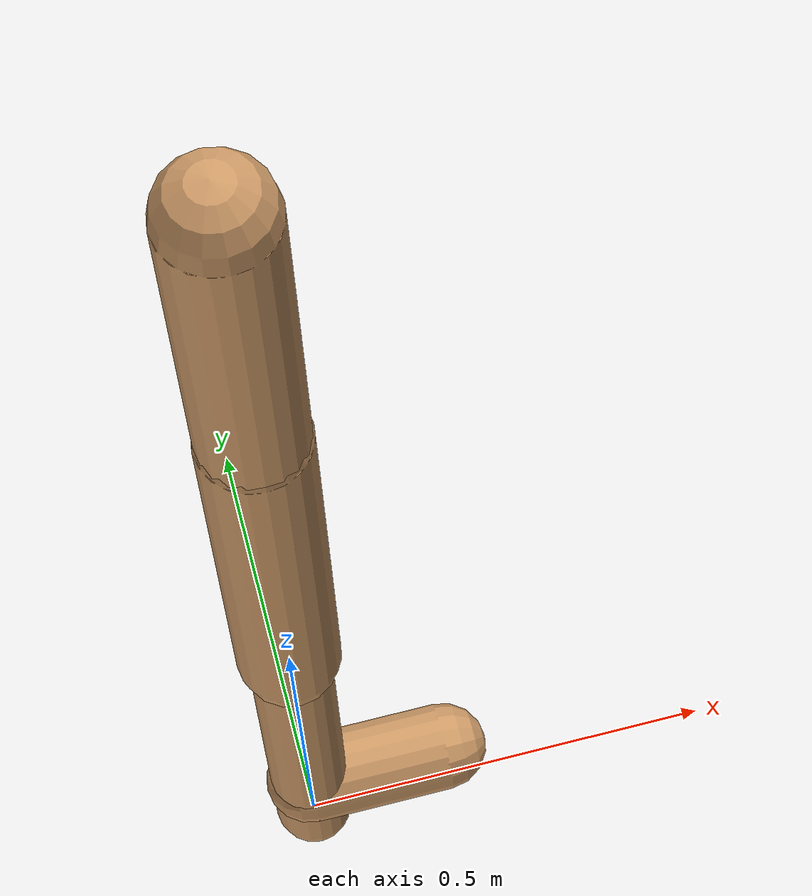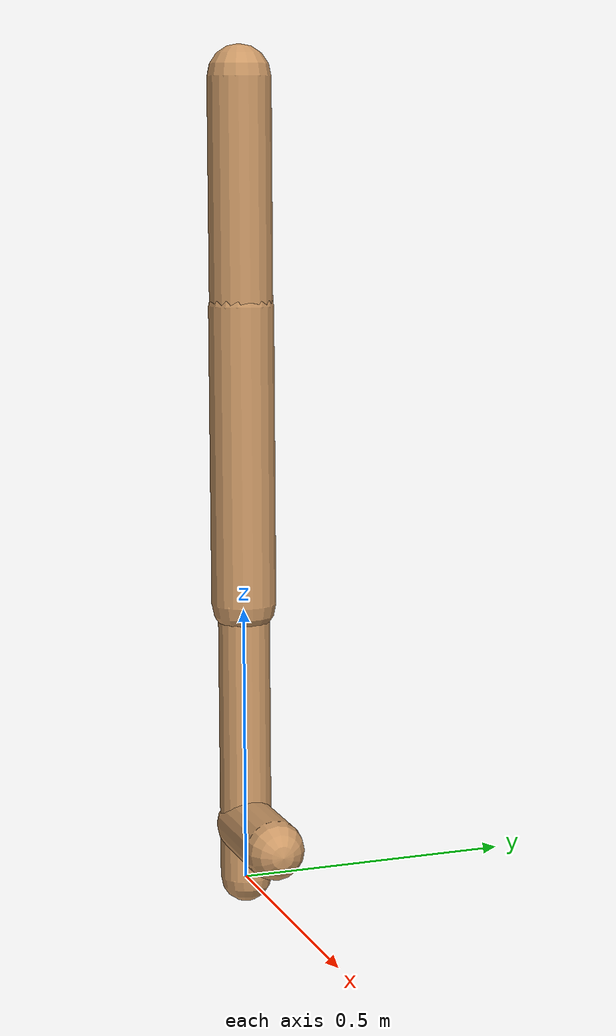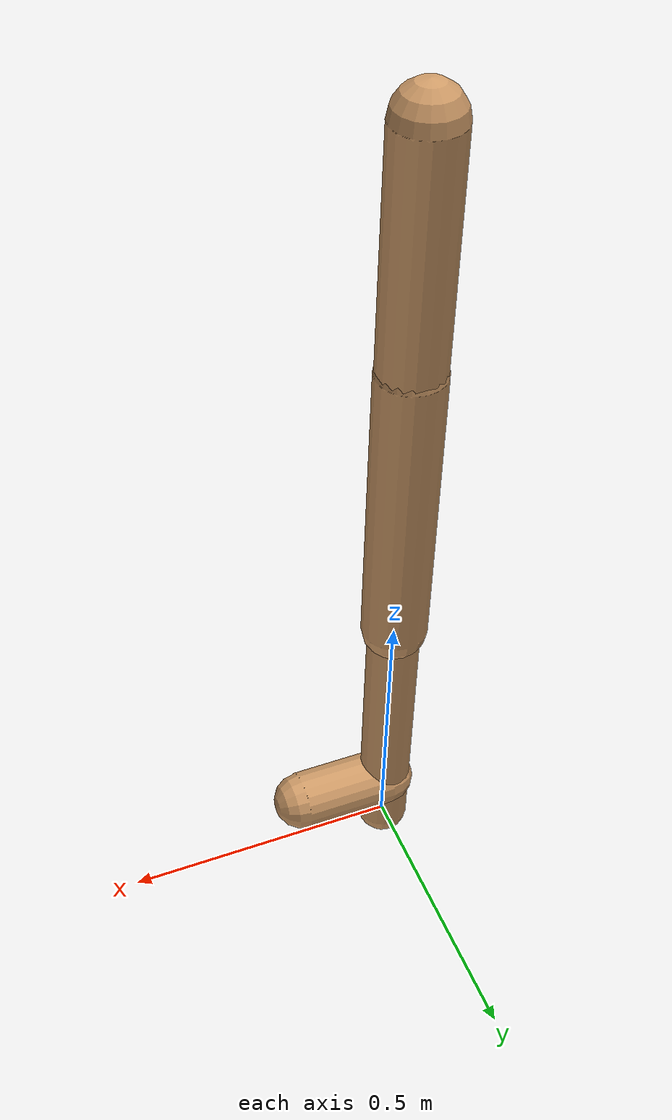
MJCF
<mujoco model="walker2d">
  <compiler angle="degree" coordinate="global" inertiafromgeom="true" />
  <default>
    <joint armature="0.01" damping=".1" limited="true" />
    <geom conaffinity="0" condim="3" contype="1" density="1000" friction="0.8 .1 .1" rgba="0.8 0.6 .4 1" />
  </default>
  <option integrator="RK4" timestep="0.002" />
  <worldbody>

    <body name="torso" pos="0 0 0.18596765506567406">
      <joint armature="0" axis="1 0 0" damping="0" limited="false" name="ignorex" pos="0 0 0" stiffness="0" type="slide" />
      <joint armature="0" axis="0 0 1" damping="0" limited="false" name="ignorez" pos="0 0 0" ref="1.25" stiffness="0" type="slide" />
      <joint armature="0" axis="0 1 0" damping="0" limited="false" name="ignorey" pos="0 0 0" stiffness="0" type="hinge" />
      <geom fromto="0 0 1.45 0 0 1.05" name="torso_geom" size="0.056454365190692725" type="capsule" />
      <body name="thigh">
        <joint axis="0 -1 0" name="thigh_joint" pos="0 0 1.05" range="-150 0" type="hinge" />
        <geom fromto="0.0 0.0 1.05 0.0 0.0 0.5119100581267859" name="thigh_geom" size="0.05817015664209744" type="capsule" />
        <body name="leg" pos="0.0 0.0 -0.08808994187321406">
          <joint axis="0 -1 0" name="leg_joint" pos="0 0 0.6" range="-150 0" type="hinge" />
          <geom fromto="0.0 0.0 0.6 0.0 0.0 0.0021222868075399803" name="leg_geom" size="0.04653612531367795" type="capsule" />
          <body name="foot" pos="0.0 0.0 -0.09787771319246003">
            <joint axis="0 -1 0" name="foot_joint" pos="0 0 0.1" range="-45 45" type="hinge" />
            <geom fromto="0.0 0.0 0.1 0.1688688176018598 0.0 0.1" name="foot_geom" size="0.05318660122144636" type="capsule" />
          </body>
        </body>
      </body>

      <body name="thigh_left">
        <joint axis="0 -1 0" name="thigh_left_joint" pos="0 0 1.05" range="-150 0" type="hinge" />
        <geom fromto="0.0 0.0 1.05 0.0 0.0 0.5119100581267859" name="thigh_left_geom" rgba=".7 .3 .6 1" size="0.05817015664209744" type="capsule" />
        <body name="leg_left" pos="0.0 0.0 -0.08808994187321406">
          <joint axis="0 -1 0" name="leg_left_joint" pos="0 0 0.6" range="-150 0" type="hinge" />
          <geom fromto="0.0 0.0 0.6 0.0 0.0 0.0021222868075399803" name="leg_left_geom" rgba=".7 .3 .6 1" size="0.04653612531367795" type="capsule" />
          <body name="foot_left" pos="0.0 0.0 -0.09787771319246003">
            <joint axis="0 -1 0" name="foot_left_joint" pos="0 0 0.1" range="-45 45" type="hinge" />
            <geom fromto="0.0 0.0 0.1 0.1688688176018598 0.0 0.1" name="foot_left_geom" rgba=".7 .3 .6 1" size="0.05318660122144636" type="capsule" />
          </body>
        </body>
      </body>
    </body>
  </worldbody>
  <actuator>

    <motor ctrllimited="true" ctrlrange="-1.0 1.0" gear="100" joint="thigh_joint" />
    <motor ctrllimited="true" ctrlrange="-1.0 1.0" gear="100" joint="leg_joint" />
    <motor ctrllimited="true" ctrlrange="-1.0 1.0" gear="100" joint="foot_joint" />
    <motor ctrllimited="true" ctrlrange="-1.0 1.0" gear="100" joint="thigh_left_joint" />
    <motor ctrllimited="true" ctrlrange="-1.0 1.0" gear="100" joint="leg_left_joint" />
    <motor ctrllimited="true" ctrlrange="-1.0 1.0" gear="100" joint="foot_left_joint" />

  </actuator>
</mujoco>
